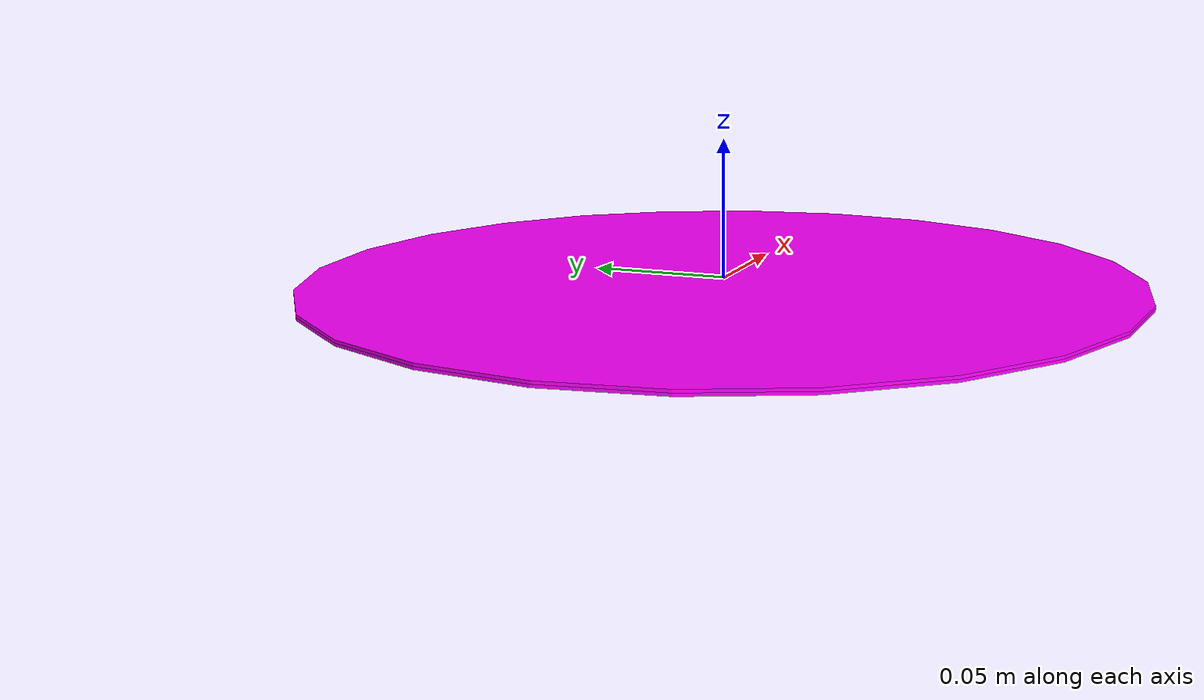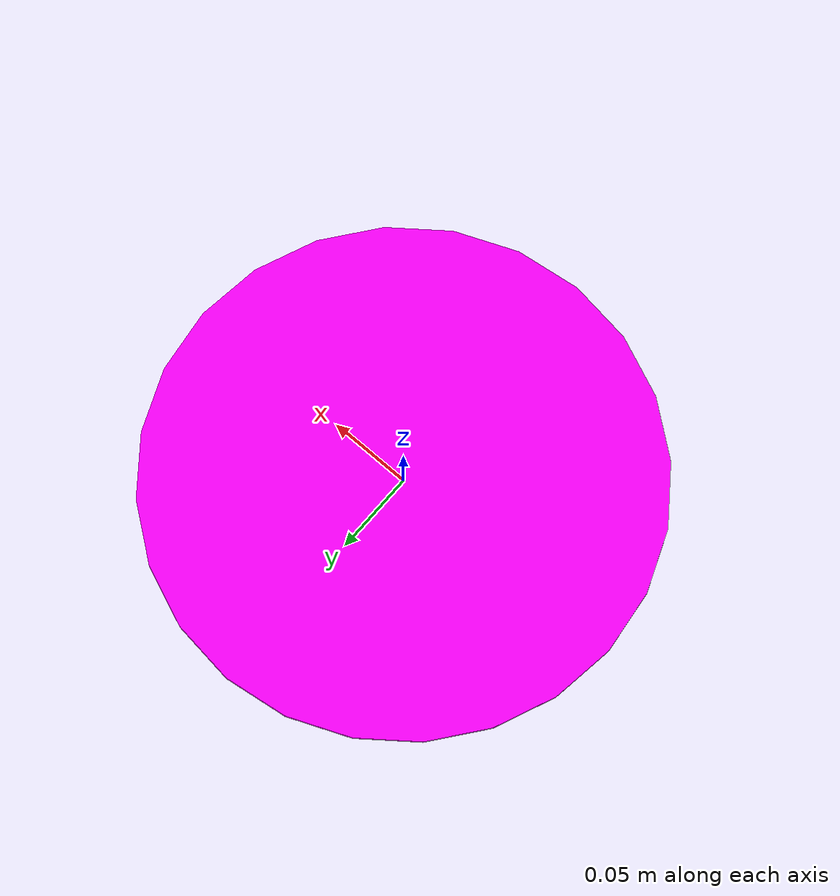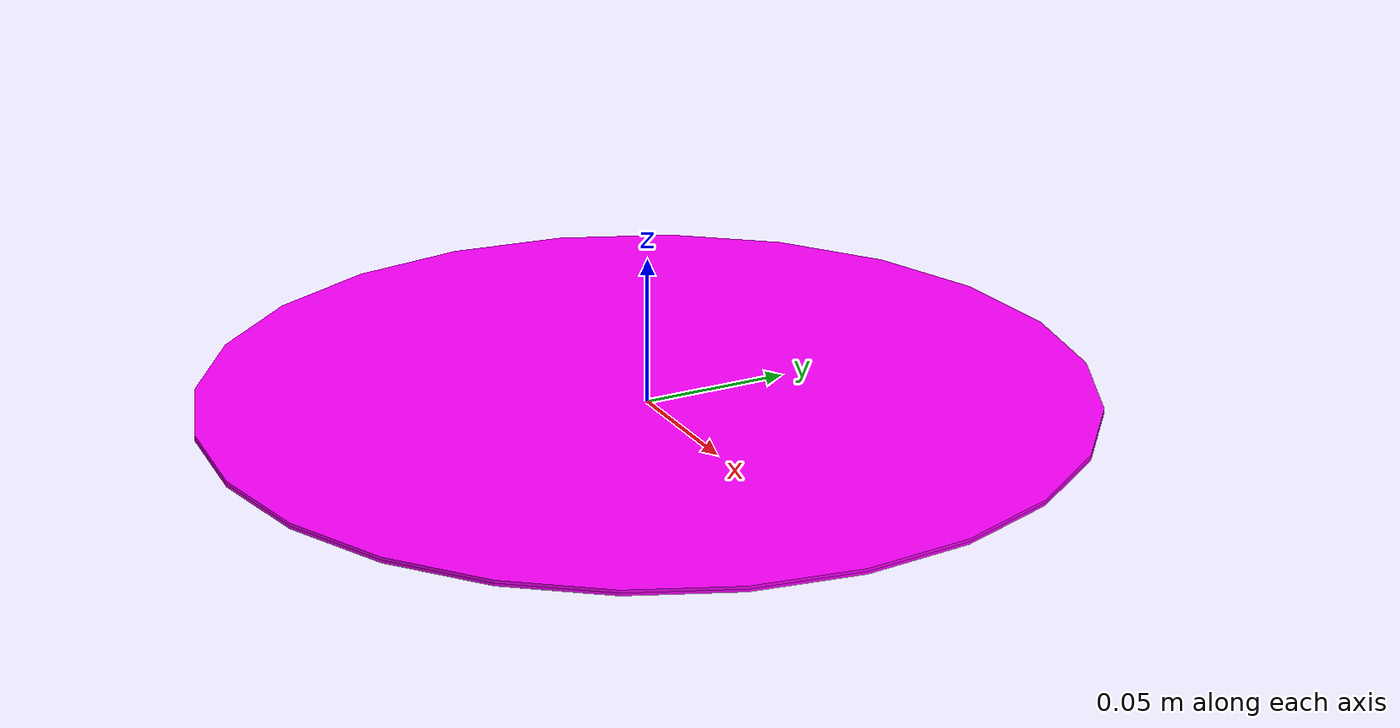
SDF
<?xml version="1.0"?>
<sdf version="1.6">
  <model name="circular_object">
    <link name="link">

      <kinematic>1</kinematic>

      <inertial>
        <pose>0 0 0 0 0 0</pose>
        <mass>0.001</mass>
        <inertia>
          <ixx>3.7499999999999997e-06</ixx>
          <ixy>0.0</ixy>
          <ixz>0.0</ixz>
          <iyy>1.8750008333333333e-06</iyy>
          <iyz>0.0</iyz>
          <izz>1.8750008333333333e-06</izz>
        </inertia>
      </inertial>

      <visual name="front_visual">
        <pose>0 0 0.0005 0 0 0</pose>

        <!-- cambiamo la geometria in un cylinder -->
        <geometry>
          <cylinder>
              <radius>0.15</radius>
              <length>0.001</length> <!-- A very small length for a flat circular object -->
          </cylinder>
        </geometry>

        <!-- cambiamo il colore -->
        <material>
            <ambient>1 0 1 1</ambient>
        </material>

      </visual>

      <visual name="rear_visual">
        <pose>0 0 -0.0005 0 0 0</pose>
        <geometry>
          <cylinder>
              <radius>0.15</radius>
              <length>0.001</length>
          </cylinder>
        </geometry>

        <material>
          <ambient>1 0 1 1</ambient>
        </material>

      </visual>

      <collision name="collision">
        <pose>0 0 0 0 0 0</pose>
        <geometry>
          <cylinder>
              <radius>0.15</radius>
              <length>0.001</length>
          </cylinder>
        </geometry>
      </collision>

    </link>
  </model>
</sdf>
